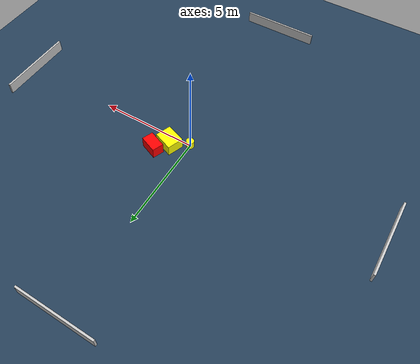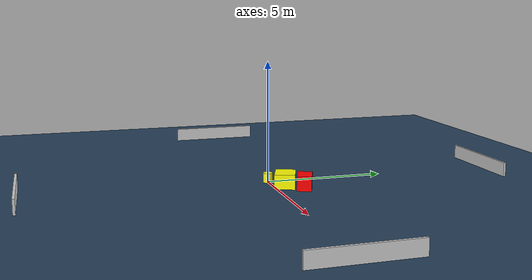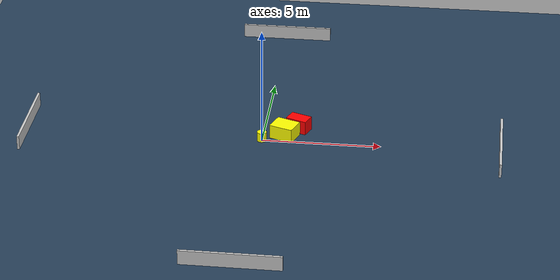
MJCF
<?xml version="1.0" ?>
<mujoco model="generated_environment">
  <option timestep="0.01" integrator="RK4" cone="elliptic"/>
  <default>
    <geom density="1"/>
  </default>
  <asset>
    <texture builtin="gradient" height="3072" name="skybox" rgb1="0.3 0.5 0.7" rgb2="0 0 0" type="skybox" width="512"/>
    <texture builtin="checker" height="300" name="groundplane" rgb1="0.2 0.3 0.4" rgb2="0.1 0.2 0.3" type="2d" width="300"/>
    <material name="groundplane" reflectance="0.2" texrepeat="5 5" texture="groundplane"/>
  </asset>
  <worldbody>
    <light dir="0 0 -1" directional="true" pos="0 0 1.5"/>
    <geom condim="3" friction="0.5 0.005 0.001" material="groundplane" name="floor" pos="0 0 0" size="0 0 0.05" type="plane"/>
    <body name="walls">
      <geom name="wall_1" condim="4" pos="-10.0 0.0 0.3" rgba="0.800000011920929 0.800000011920929 0.800000011920929 1.0" size="0.05 2.0 0.3" type="box"/>
      <geom name="wall_2" condim="4" pos="10.0 0.0 0.3" rgba="0.800000011920929 0.800000011920929 0.800000011920929 1.0" size="0.05 2.0 0.3" type="box"/>
      <geom name="wall_3" condim="4" pos="0.0 -10.0 0.3" rgba="0.800000011920929 0.800000011920929 0.800000011920929 1.0" size="2.0 0.05 0.3" type="box"/>
      <geom name="wall_4" condim="4" pos="0.0 10.0 0.3" rgba="0.800000011920929 0.800000011920929 0.800000011920929 1.0" size="2.0 0.05 0.3" type="box"/>
    </body>
    <body name="robot">
      <joint name="joint_x" type="slide" pos="0 0 0" axis="1 0 0"/>
      <joint name="joint_y" type="slide" pos="0 0 0" axis="0 1 0"/>
      <geom name="robot" type="cylinder" pos="0.0 0.0 0.2" size="0.2 0.2 0.0" mass="5.0" friction="1.0 0.005 0.0001" condim="4" rgba="1.0 1.0 0.0 1.0"/>
    </body>
    <body name="obstacle_1_movable">
      <geom name="obstacle_1_movable" condim="4" pos="0.9178525881197458 0.4612691221802941 0.3" euler="0 0 249.5072758930985" friction="0.0 0.005 0.001" rgba="1.0 1.0 0.0 1.0" size="0.41520923163195844 0.5114230988230137 0.3" type="box" mass="0.1"/>
      <joint type="free"/>
    </body>
    <body name="obstacle_2_static">
      <geom name="obstacle_2_static" condim="4" pos="1.451143404954395 1.1114238227968738 0.3" euler="0 0 338.13069230962594" friction="0.0 0.005 0.001" rgba="1.0 0.0 0.0 1.0" size="0.45731717808462213 0.29351364677656655 0.3" type="box"/>
    </body>
  </worldbody>
  <actuator>
    <motor name="actuator_x" joint="joint_x" gear="1" ctrlrange="-1 1"/>
    <motor name="actuator_y" joint="joint_y" gear="1" ctrlrange="-1 1"/>
  </actuator>
</mujoco>
